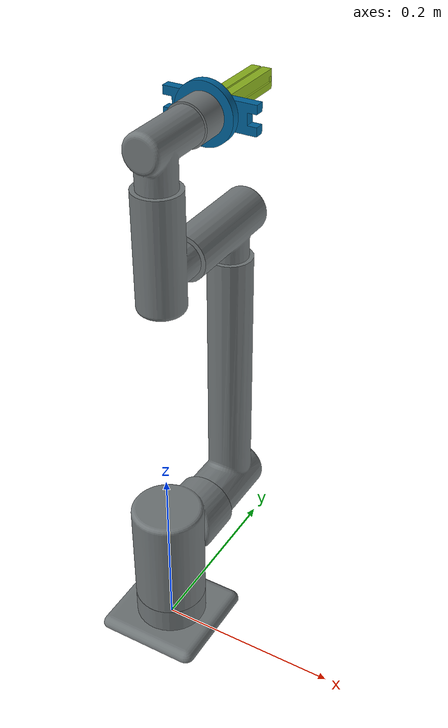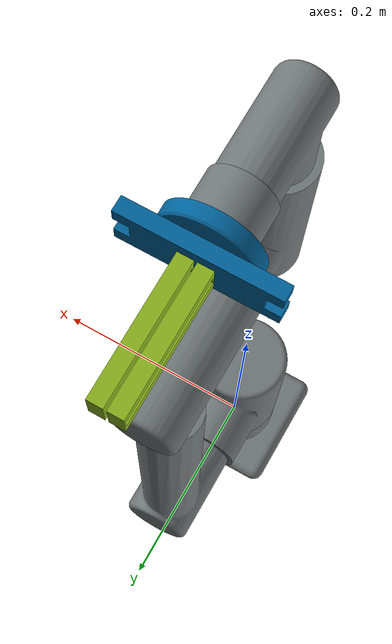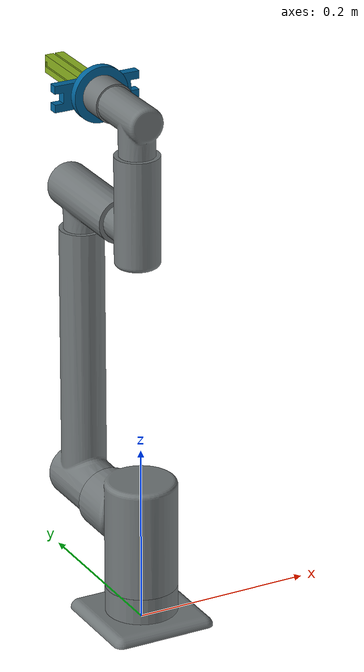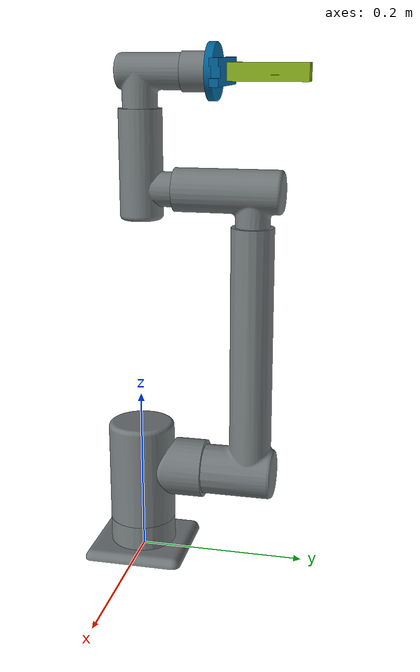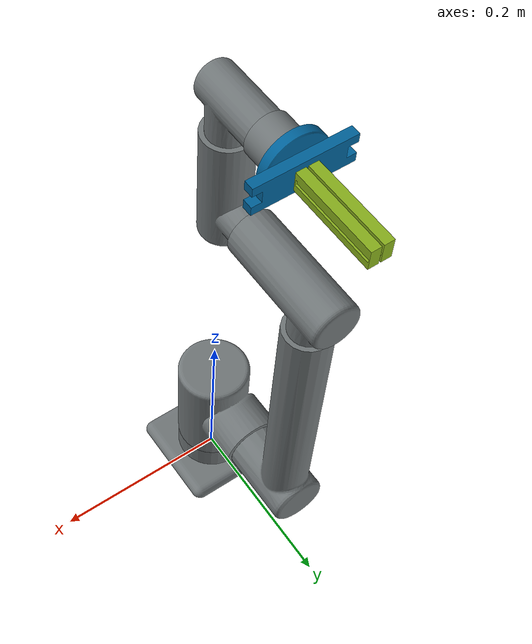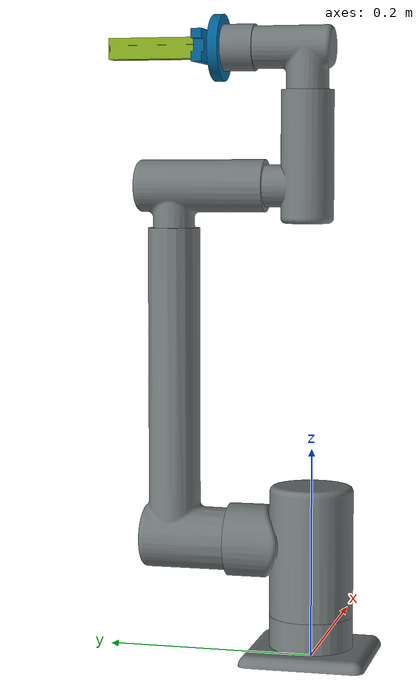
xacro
<?xml version="1.0"?>
<robot xmlns:xacro="http://www.ros.org/wiki/xacro" name="bobby_v3">
    <xacro:arg name="initial_positions_file" default="initial_positions.yaml" />

    <!-- Import bobby_v3 urdf file -->
    <xacro:include filename="$(find bobby)/urdf/bobby.urdf" />

    <!-- Import control_xacro -->
    <xacro:include filename="bobby_v3.ros2_control.xacro" />

    <xacro:bobby_v3_ros2_control name="FakeSystem" initial_positions_file="$(arg initial_positions_file)"/>

</robot>

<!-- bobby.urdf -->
<robot
  name="bobby_v3">
  <link
    name="base_link">
    <inertial>
      <origin
        xyz="-6.93889390390723E-18 -8.67361737988404E-18 0.00903009179983284"
        rpy="0 0 0" />
      <mass
        value="0.168853238991176" />
      <inertia
        ixx="0.000188908722369925"
        ixy="-5.7902642878712E-21"
        ixz="4.9831826221772E-21"
        iyy="0.000188908722369926"
        iyz="-1.68425616825269E-20"
        izz="0.000347553571686864" />
    </inertial>
    <visual>
      <origin
        xyz="0 0 0"
        rpy="0 0 0" />
      <geometry>
        <mesh
          filename="package://bobby/meshes/base_link.STL" />
      </geometry>
      <material
        name="technikum_grau">
        <color
          rgba="0.447 0.471 0.478 1" />
      </material>
    </visual>
    <collision>
      <origin
        xyz="0 0 0"
        rpy="0 0 0" />
      <geometry>
        <mesh
          filename="package://bobby/meshes/base_link.STL" />
      </geometry>
    </collision>
  </link>
  <link
    name="link_1">
    <inertial>
      <origin
        xyz="-2.15652112519824E-07 0.0107734448420019 0.109157368914489"
        rpy="0 0 0" />
      <mass
        value="0.19567354215977" />
      <inertia
        ixx="0.00036569472644765"
        ixy="3.25955315579442E-10"
        ixz="1.75361435601525E-09"
        iyy="0.000399646100597159"
        iyz="5.8509284245807E-07"
        izz="0.000228564395108126" />
    </inertial>
    <visual>
      <origin
        xyz="0 0 0"
        rpy="0 0 0" />
      <geometry>
        <mesh
          filename="package://bobby/meshes/link_1.STL" />
      </geometry>
      <material
        name="technikum_grau">
        <color
          rgba="0.447 0.471 0.478 1" />
      </material>
    </visual>
    <collision>
      <origin
        xyz="0 0 0"
        rpy="0 0 0" />
      <geometry>
        <mesh
          filename="package://bobby/meshes/link_1.STL" />
      </geometry>
    </collision>
  </link>
  <joint
    name="joint_1"
    type="revolute">
    <origin
      xyz="0 0 0"
      rpy="0 0 0" />
    <parent
      link="base_link" />
    <child
      link="link_1" />
    <axis
      xyz="0 0 1" />
    <limit
      lower="-3.14"
      upper="3.14"
      effort="80"
      velocity="1.5" />
    <dynamics
      damping="0.2" />
  </joint>
  <link
    name="link_2">
    <inertial>
      <origin
        xyz="-1.60868451060114E-08 -0.114041602248857 0.132749921878617"
        rpy="0 0 0" />
      <mass
        value="0.277035202004268" />
      <inertia
        ixx="0.00289478457764281"
        ixy="-1.24048336188053E-09"
        ixz="1.22368569354385E-09"
        iyy="0.000189976410051189"
        iyz="7.94253254153287E-05"
        izz="0.00286373711090803" />
    </inertial>
    <visual>
      <origin
        xyz="0 0 0"
        rpy="0 0 0" />
      <geometry>
        <mesh
          filename="package://bobby/meshes/link_2.STL" />
      </geometry>
      <material
        name="technikum_grau">
        <color
          rgba="0.447 0.471 0.478 1" />
      </material>
    </visual>
    <collision>
      <origin
        xyz="0 0 0"
        rpy="0 0 0" />
      <geometry>
        <mesh
          filename="package://bobby/meshes/link_2.STL" />
      </geometry>
    </collision>
  </link>
  <joint
    name="joint_2"
    type="revolute">
    <origin
      xyz="0 0 0.11"
      rpy="-1.5707963267949 0 0" />
    <parent
      link="link_1" />
    <child
      link="link_2" />
    <axis
      xyz="0 0 1" />
    <limit
      lower="-2"
      upper="2"
      effort="60"
      velocity="1.5" />
    <dynamics
      damping="0.15" />
  </joint>
  <link
    name="link_3">
    <inertial>
      <origin
        xyz="-4.46835846875521E-07 -0.021332834225784 0.336950985055037"
        rpy="0 0 0" />
      <mass
        value="0.104323112073039" />
      <inertia
        ixx="0.000172552084016025"
        ixy="1.24275852401533E-10"
        ixz="-1.16774421742549E-10"
        iyy="5.69008711097092E-05"
        iyz="6.87130934985452E-06"
        izz="0.000165314592613562" />
    </inertial>
    <visual>
      <origin
        xyz="0 0 0"
        rpy="0 0 0" />
      <geometry>
        <mesh
          filename="package://bobby/meshes/link_3.STL" />
      </geometry>
      <material
        name="technikum_grau">
        <color
          rgba="0.447 0.471 0.478 1" />
      </material>
    </visual>
    <collision>
      <origin
        xyz="0 0 0"
        rpy="0 0 0" />
      <geometry>
        <mesh
          filename="package://bobby/meshes/link_3.STL" />
      </geometry>
    </collision>
  </link>
  <joint
    name="joint_3"
    type="revolute">
    <origin
      xyz="0 0 0.135"
      rpy="1.5707963267949 0 0" />
    <parent
      link="link_2" />
    <child
      link="link_3" />
    <axis
      xyz="0 0 -1" />
    <limit
      lower="-2.5"
      upper="2.5"
      effort="40"
      velocity="2" />
    <dynamics
      damping="0.1" />
  </joint>
  <link
    name="link_4">
    <inertial>
      <origin
        xyz="-7.35759638319233E-08 0.0214973669189123 0.127010226840711"
        rpy="0 0 0" />
      <mass
        value="0.104021403954901" />
      <inertia
        ixx="0.000172095228395825"
        ixy="5.22139873101622E-11"
        ixz="-7.41592698784508E-11"
        iyy="5.67379606621111E-05"
        iyz="-6.68507413422721E-06"
        izz="0.000164961710546567" />
    </inertial>
    <visual>
      <origin
        xyz="0 0 0"
        rpy="0 0 0" />
      <geometry>
        <mesh
          filename="package://bobby/meshes/link_4.STL" />
      </geometry>
      <material
        name="technikum_grau">
        <color
          rgba="0.447 0.471 0.478 1" />
      </material>
    </visual>
    <collision>
      <origin
        xyz="0 0 0"
        rpy="0 0 0" />
      <geometry>
        <mesh
          filename="package://bobby/meshes/link_4.STL" />
      </geometry>
    </collision>
  </link>
  <joint
    name="joint_4"
    type="revolute">
    <origin
      xyz="0 0.000262563950500366 0.34"
      rpy="1.5707963267949 0 0" />
    <parent
      link="link_3" />
    <child
      link="link_4" />
    <axis
      xyz="0 0 -1" />
    <limit
      lower="-3.14"
      upper="3.14"
      effort="20"
      velocity="3" />
    <dynamics
      damping="0.05" />
  </joint>
  <link
    name="link_5">
    <inertial>
      <origin
        xyz="-7.72747078825464E-09 0.0118852064404541 0.124078122231419"
        rpy="0 0 0" />
      <mass
        value="0.0635312499775335" />
      <inertia
        ixx="5.3078651829625E-05"
        ixy="-2.16462957974075E-11"
        ixz="-2.18923663634894E-11"
        iyy="2.59966766341151E-05"
        iyz="-4.43828682190682E-06"
        izz="4.66910033521407E-05" />
    </inertial>
    <visual>
      <origin
        xyz="0 0 0"
        rpy="0 0 0" />
      <geometry>
        <mesh
          filename="package://bobby/meshes/link_5.STL" />
      </geometry>
      <material
        name="technikum_grau">
        <color
          rgba="0.447 0.471 0.478 1" />
      </material>
    </visual>
    <collision>
      <origin
        xyz="0 0 0"
        rpy="0 0 0" />
      <geometry>
        <mesh
          filename="package://bobby/meshes/link_5.STL" />
      </geometry>
    </collision>
  </link>
  <joint
    name="joint_5"
    type="revolute">
    <origin
      xyz="0 -0.000178126389957234 0.13"
      rpy="-1.5707963267949 0 0" />
    <parent
      link="link_4" />
    <child
      link="link_5" />
    <axis
      xyz="0 0 -1" />
    <limit
      lower="-2"
      upper="2"
      effort="15"
      velocity="3.5" />
    <dynamics
      damping="0.05" />
  </joint>
  <link
    name="link_6">
    <inertial>
      <origin
        xyz="-9.09411435046081E-14 -4.99933427988708E-13 0.00443393044915172"
        rpy="0 0 0" />
      <mass
        value="0.0247796339074861" />
      <inertia
        ixx="5.79719477129161E-06"
        ixy="1.69371937738642E-21"
        ixz="-1.74584771115396E-21"
        iyy="5.61206813663289E-06"
        iyz="1.25047386620786E-20"
        izz="8.2664668127508E-06" />
    </inertial>
    <visual>
      <origin xyz="0 0 -0.005" rpy="0 0 0"/>
      <geometry><mesh filename="package://bobby/meshes/link_6.STL" scale="0.001 0.001 0.001"/></geometry>
      <material name="technikum_grau"><color rgba="0.447 0.471 0.478 1"/></material>
    </visual>
    <collision>
      <origin xyz="0 0 -0.005" rpy="0 0 0"/>
      <geometry><mesh filename="package://bobby/meshes/link_6.STL" scale="0.001 0.001 0.001"/></geometry>
    </collision>
  </link>
  <joint
    name="joint_6"
    type="revolute">
    <origin
      xyz="0 0.0700000000012193 0.129999999999002"
      rpy="-1.57079632679489 0 0" />
    <parent
      link="link_5" />
    <child
      link="link_6" />
    <axis
      xyz="0 0 -1" />
    <limit
      lower="-3.14"
      upper="3.14"
      effort="10"
      velocity="4" />
    <dynamics
      damping="0.03" />
  </joint>
  <!-- ===================== Parallelbackengreifer (an link_5) ===================== -->
  <!-- Flanschplatte -->
  <link name="gripper_flange">
    <inertial>
      <origin xyz="0 0 0.005" rpy="0 0 0"/>
      <mass value="0.2"/>
      <inertia ixx="6.782e-05" ixy="0" ixz="0" iyy="6.782e-05" iyz="0" izz="1.323e-04"/>
    </inertial>
    <visual>
      <origin xyz="0 0 0.005" rpy="0 0 0"/>
      <geometry><mesh filename="package://bobby/meshes/gripper_flange.STL" scale="0.001 0.001 0.001"/></geometry>
      <material name="technikum_blau"><color rgba="0 0.392 0.612 1"/></material>
    </visual>
    <collision>
      <origin xyz="0 0 0.005" rpy="0 0 0"/>
      <geometry><mesh filename="package://bobby/meshes/gripper_flange.STL" scale="0.001 0.001 0.001"/></geometry>
    </collision>
  </link>
  <joint name="gripper_flange_joint" type="fixed">
    <origin xyz="0 0 0.01" rpy="0 0 0"/>
    <parent link="link_6"/>
    <child link="gripper_flange"/>
    <axis xyz="0 0 0"/>
  </joint>

  <!-- Greiferkörper -->
  <link name="gripper_base">
    <inertial>
      <origin xyz="0 0 0.015" rpy="0 0 0"/>
      <mass value="0.028"/>
      <inertia ixx="2.333e-06" ixy="0" ixz="0" iyy="2.357e-05" iyz="0" izz="2.543e-05"/>
    </inertial>
    <visual>
      <origin xyz="0 0 0.015" rpy="0 0 0"/>
      <geometry><mesh filename="package://bobby/meshes/gripper_base.STL" scale="0.001 0.001 0.001"/></geometry>
      <material name="technikum_blau"/>
    </visual>
    <collision>
      <origin xyz="0 0 0.015" rpy="0 0 0"/>
      <geometry><mesh filename="package://bobby/meshes/gripper_base.STL" scale="0.001 0.001 0.001"/></geometry>
    </collision>
  </link>
  <joint name="gripper_base_joint" type="fixed">
    <origin xyz="0 0 0" rpy="0 0 0"/>
    <parent link="gripper_flange"/>
    <child link="gripper_base"/>
    <axis xyz="0 0 0"/>
  </joint>

  <!-- Linke Backe (angetrieben) -->
  <link name="finger_left">
    <inertial>
      <origin xyz="0 0 0.045" rpy="0 0 0"/>
      <mass value="0.05"/>
      <inertia ixx="3.542e-05" ixy="0" ixz="0" iyy="3.417e-05" iyz="0" izz="2.083e-06"/>
    </inertial>
    <visual>
      <origin xyz="0 0 0.045" rpy="0 0 0"/>
      <geometry><mesh filename="package://bobby/meshes/finger_left.STL" scale="0.001 0.001 0.001"/></geometry>
      <material name="technikum_gruen"><color rgba="0.545 0.702 0.114 1"/></material>
    </visual>
    <collision>
      <origin xyz="0 0 0.045" rpy="0 0 0"/>
      <geometry><mesh filename="package://bobby/meshes/finger_left.STL" scale="0.001 0.001 0.001"/></geometry>
    </collision>
  </link>
  <joint name="finger_left_joint" type="prismatic">
    <origin xyz="0.006 0 0.021" rpy="0 0 0"/>
    <parent link="gripper_base"/>
    <child link="finger_left"/>
    <axis xyz="1 0 0"/>
    <limit lower="0" upper="0.04" effort="50" velocity="0.1"/>
  </joint>

  <!-- Rechte Backe (gegenläufig gekoppelt) -->
  <link name="finger_right">
    <inertial>
      <origin xyz="0 0 0.045" rpy="0 0 0"/>
      <mass value="0.05"/>
      <inertia ixx="3.542e-05" ixy="0" ixz="0" iyy="3.417e-05" iyz="0" izz="2.083e-06"/>
    </inertial>
    <visual>
      <origin xyz="0 0 0.045" rpy="0 0 0"/>
      <geometry><mesh filename="package://bobby/meshes/finger_left.STL" scale="0.001 0.001 0.001"/></geometry>
      <material name="technikum_gruen"><color rgba="0.545 0.702 0.114 1"/></material>
    </visual>
    <collision>
      <origin xyz="0 0 0.045" rpy="0 0 0"/>
      <geometry><mesh filename="package://bobby/meshes/finger_left.STL" scale="0.001 0.001 0.001"/></geometry>
    </collision>
  </link>
  <joint name="finger_right_joint" type="prismatic">
    <origin xyz="-0.006 0 0.021" rpy="0 0 0"/>
    <parent link="gripper_base"/>
    <child link="finger_right"/>
    <axis xyz="1 0 0"/>
    <limit lower="-0.04" upper="0" effort="50" velocity="0.1"/>
  </joint>

  <!-- TCP: mittig zwischen den Backen, an der Backenspitze -->
  <link name="TCP"/>
  <joint name="TCP_joint" type="fixed">
    <origin xyz="0 0 0.111" rpy="0 0 0"/>
    <parent link="gripper_base"/>
    <child link="TCP"/>
    <axis xyz="0 0 0"/>
  </joint>
</robot>
